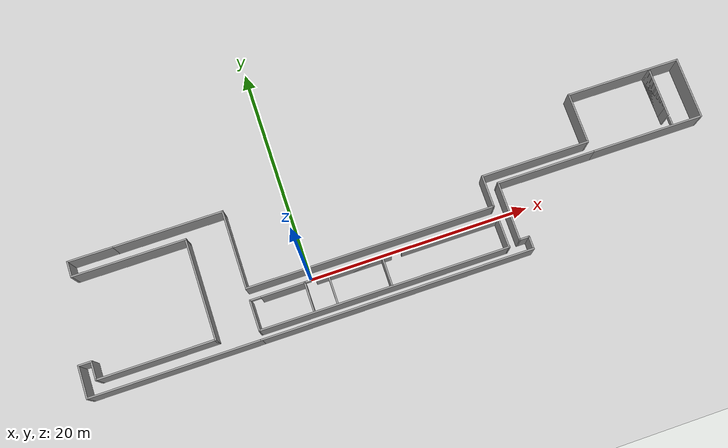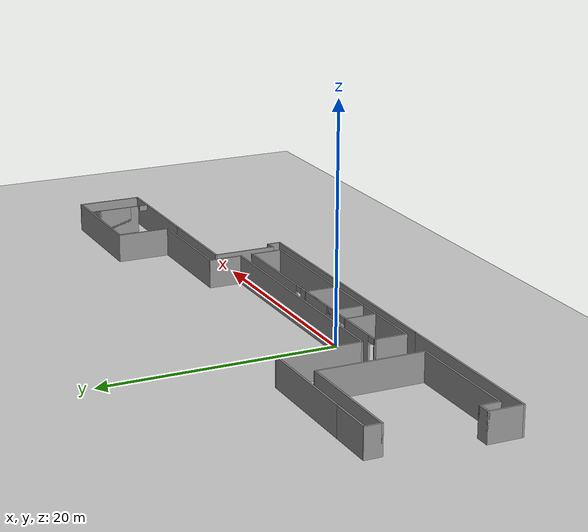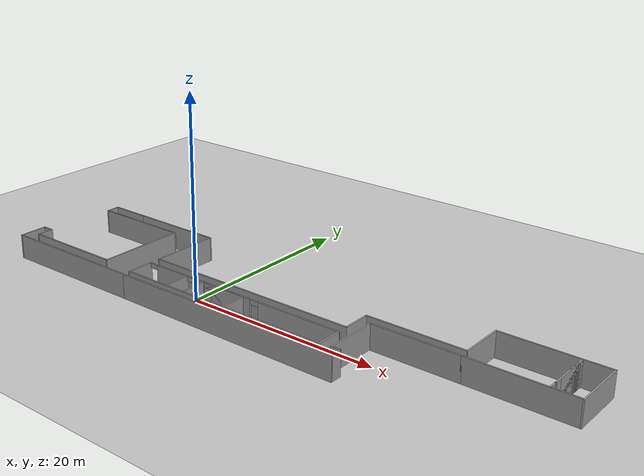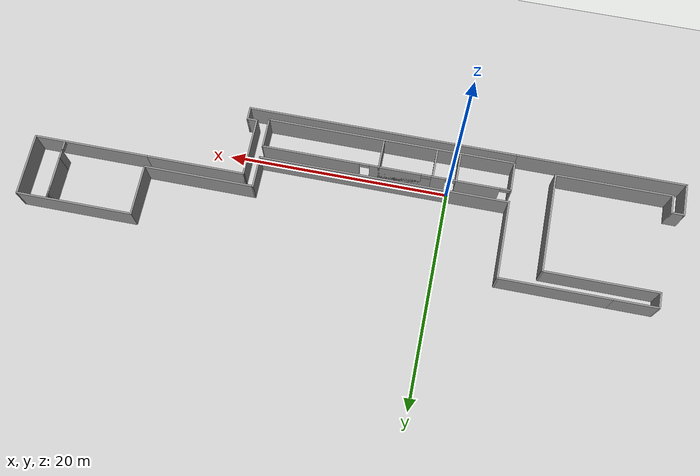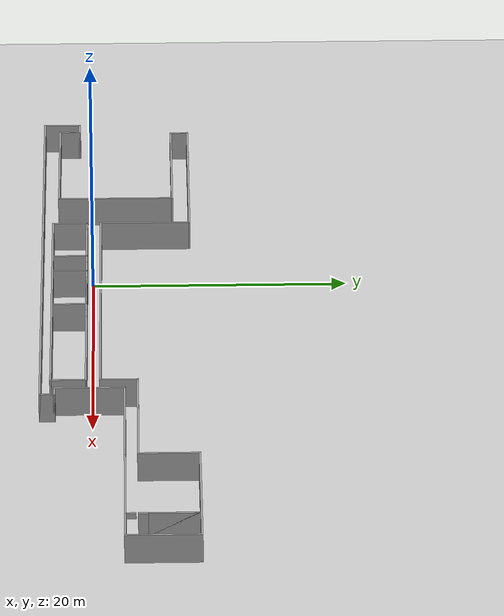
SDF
<sdf version="1.9">
 <world name="default">
  <light name="sun" type="directional">
   <pose>0 0 10 0 0 0</pose>
   <diffuse>0.8 0.8 0.8 1</diffuse>
   <specular>0.2 0.2 0.2 1</specular>
   <attenuation>
    <range>1000</range>
    <constant>0.9</constant>
    <linear>0.01</linear>
    <quadratic>0.001</quadratic>
   </attenuation>
   <direction>-0.5 0.1 -0.9</direction>
  </light>
  <model name="ground_plane">
   <static>1</static>
   <link name="link">
    <collision name="collision">
     <geometry><plane><normal>0 0 1</normal><size>100 100</size></plane></geometry>
     <surface><friction><ode><mu>100</mu><mu2>50</mu2></ode></friction></surface>
    </collision>
    <visual name="visual">
     <cast_shadows>0</cast_shadows>
     <geometry><plane><normal>0 0 1</normal><size>100 100</size></plane></geometry>
     <material>
      <script><uri>file://media/materials/scripts/gazebo.material</uri><name>Gazebo/Grey</name></script>
     </material>
    </visual>
   </link>
  </model>
  <gravity>0 0 -9.8</gravity>
  <magnetic_field>6e-06 2.3e-05 -4.2e-05</magnetic_field>
  <atmosphere type="adiabatic"/>
  <physics type="ode">
   <max_step_size>0.001</max_step_size>
   <real_time_factor>1</real_time_factor>
   <real_time_update_rate>1000</real_time_update_rate>
  </physics>
  <scene><ambient>0.4 0.4 0.4 1</ambient><background>0.7 0.7 0.7 1</background><shadows>1</shadows></scene>
  <audio><device>default</device></audio>
  <spherical_coordinates>
   <surface_model>EARTH_WGS84</surface_model>
   <latitude_deg>0</latitude_deg>
   <longitude_deg>0</longitude_deg>
   <elevation>0</elevation>
   <heading_deg>0</heading_deg>
  </spherical_coordinates>
  <model name="office_v1">
   <pose>8.25459 2.01112 0 0 -0 0</pose>
   <link name="Wall_1">
    <collision name="Wall_1_Collision">
     <geometry><box><size>22.5 0.15 2.5</size></box></geometry>
     <pose>0 0 1.25 0 -0 0</pose>
    </collision>
    <visual name="Wall_1_Visual">
     <pose>0 0 1.25 0 -0 0</pose>
     <geometry><box><size>22.5 0.15 2.5</size></box></geometry>
     <material>
      <script><uri>file://media/materials/scripts/gazebo.material</uri><name>Gazebo/Grey</name></script>
      <ambient>1 1 1 1</ambient>
     </material>
     <meta><layer>0</layer></meta>
    </visual>
    <pose>-2.525 -1.425 0 0 -0 0</pose>
   </link>
   <link name="Wall_18">
    <collision name="Wall_18_Collision">
     <geometry><box><size>9 0.15 2.5</size></box></geometry>
     <pose>0 0 1.25 0 -0 0</pose>
    </collision>
    <visual name="Wall_18_Visual">
     <pose>0 0 1.25 0 -0 0</pose>
     <geometry><box><size>9 0.15 2.5</size></box></geometry>
     <material>
      <script><uri>file://media/materials/scripts/gazebo.material</uri><name>Gazebo/Grey</name></script>
      <ambient>1 1 1 1</ambient>
     </material>
     <meta><layer>0</layer></meta>
    </visual>
    <pose>14.175 0.425 0 0 -0 0</pose>
   </link>
   <link name="Wall_19">
    <collision name="Wall_19_Collision">
     <geometry><box><size>10.25 0.15 2.5</size></box></geometry>
     <pose>0 0 1.25 0 -0 0</pose>
    </collision>
    <visual name="Wall_19_Visual">
     <pose>0 0 1.25 0 -0 0</pose>
     <geometry><box><size>10.25 0.15 2.5</size></box></geometry>
     <material>
      <script><uri>file://media/materials/scripts/gazebo.material</uri><name>Gazebo/Grey</name></script>
      <ambient>1 1 1 1</ambient>
     </material>
     <meta><layer>0</layer></meta>
    </visual>
    <pose>23.65 0.425 0 0 -0 0</pose>
   </link>
   <link name="Wall_2">
    <collision name="Wall_2_Collision">
     <geometry><box><size>3 0.15 2.5</size></box></geometry>
     <pose>0 0 1.25 0 -0 0</pose>
    </collision>
    <visual name="Wall_2_Visual">
     <pose>0 0 1.25 0 -0 0</pose>
     <geometry><box><size>3 0.15 2.5</size></box></geometry>
     <material>
      <script><uri>file://media/materials/scripts/gazebo.material</uri><name>Gazebo/Grey</name></script>
      <ambient>1 1 1 1</ambient>
     </material>
     <meta><layer>0</layer></meta>
    </visual>
    <pose>8.65 -0 0 0 -0 1.5708</pose>
   </link>
   <link name="Wall_22">
    <pose>-2.525 -2.525 0 0 -0 0</pose>
    <visual name="Wall_22_Visual_0">
     <pose>-11.1859 0 1.25 0 -0 0</pose>
     <geometry><box><size>0.128177 0.15 2.5</size></box></geometry>
     <material>
      <script><uri>file://media/materials/scripts/gazebo.material</uri><name>Gazebo/Grey</name></script>
      <ambient>1 1 1 1</ambient>
     </material>
     <meta><layer>0</layer></meta>
    </visual>
    <collision name="Wall_22_Collision_0">
     <geometry><box><size>0.128177 0.15 2.5</size></box></geometry>
     <pose>-11.1859 0 1.25 0 -0 0</pose>
    </collision>
    <visual name="Wall_22_Visual_1">
     <pose>-8.24603 0 1.25 0 -0 0</pose>
     <geometry><box><size>3.95159 0.15 2.5</size></box></geometry>
     <material>
      <script><uri>file://media/materials/scripts/gazebo.material</uri><name>Gazebo/Grey</name></script>
      <ambient>1 1 1 1</ambient>
     </material>
     <meta><layer>0</layer></meta>
    </visual>
    <collision name="Wall_22_Collision_1">
     <geometry><box><size>3.95159 0.15 2.5</size></box></geometry>
     <pose>-8.24603 0 1.25 0 -0 0</pose>
    </collision>
    <visual name="Wall_22_Visual_2">
     <pose>-4.73281 0 1.25 0 -0 0</pose>
     <geometry><box><size>1.27485 0.15 2.5</size></box></geometry>
     <material>
      <script><uri>file://media/materials/scripts/gazebo.material</uri><name>Gazebo/Grey</name></script>
      <ambient>1 1 1 1</ambient>
     </material>
     <meta><layer>0</layer></meta>
    </visual>
    <collision name="Wall_22_Collision_2">
     <geometry><box><size>1.27485 0.15 2.5</size></box></geometry>
     <pose>-4.73281 0 1.25 0 -0 0</pose>
    </collision>
    <visual name="Wall_22_Visual_3">
     <pose>-0.86218 0 1.25 0 -0 0</pose>
     <geometry><box><size>4.6664 0.15 2.5</size></box></geometry>
     <material>
      <script><uri>file://media/materials/scripts/gazebo.material</uri><name>Gazebo/Grey</name></script>
      <ambient>1 1 1 1</ambient>
     </material>
     <meta><layer>0</layer></meta>
    </visual>
    <collision name="Wall_22_Collision_3">
     <geometry><box><size>4.6664 0.15 2.5</size></box></geometry>
     <pose>-0.86218 0 1.25 0 -0 0</pose>
    </collision>
    <visual name="Wall_22_Visual_4">
     <pose>6.81051 0 1.25 0 -0 0</pose>
     <geometry><box><size>8.87898 0.15 2.5</size></box></geometry>
     <material>
      <script><uri>file://media/materials/scripts/gazebo.material</uri><name>Gazebo/Grey</name></script>
      <ambient>1 1 1 1</ambient>
     </material>
     <meta><layer>0</layer></meta>
    </visual>
    <collision name="Wall_22_Collision_4">
     <geometry><box><size>8.87898 0.15 2.5</size></box></geometry>
     <pose>6.81051 0 1.25 0 -0 0</pose>
    </collision>
    <visual name="Wall_22_Visual_5">
     <pose>-10.6718 0 2.25 0 -0 0</pose>
     <geometry><box><size>0.9 0.15 0.5</size></box></geometry>
     <material>
      <script><uri>file://media/materials/scripts/gazebo.material</uri><name>Gazebo/Grey</name></script>
      <ambient>1 1 1 1</ambient>
     </material>
     <meta><layer>0</layer></meta>
    </visual>
    <collision name="Wall_22_Collision_5">
     <geometry><box><size>0.9 0.15 0.5</size></box></geometry>
     <pose>-10.6718 0 2.25 0 -0 0</pose>
    </collision>
    <visual name="Wall_22_Visual_6">
     <pose>-5.82023 0 2.25 0 -0 0</pose>
     <geometry><box><size>0.9 0.15 0.5</size></box></geometry>
     <material>
      <script><uri>file://media/materials/scripts/gazebo.material</uri><name>Gazebo/Grey</name></script>
      <ambient>1 1 1 1</ambient>
     </material>
     <meta><layer>0</layer></meta>
    </visual>
    <collision name="Wall_22_Collision_6">
     <geometry><box><size>0.9 0.15 0.5</size></box></geometry>
     <pose>-5.82023 0 2.25 0 -0 0</pose>
    </collision>
    <visual name="Wall_22_Visual_7">
     <pose>-3.64538 0 2.25 0 -0 0</pose>
     <geometry><box><size>0.9 0.15 0.5</size></box></geometry>
     <material>
      <script><uri>file://media/materials/scripts/gazebo.material</uri><name>Gazebo/Grey</name></script>
      <ambient>1 1 1 1</ambient>
     </material>
     <meta><layer>0</layer></meta>
    </visual>
    <collision name="Wall_22_Collision_7">
     <geometry><box><size>0.9 0.15 0.5</size></box></geometry>
     <pose>-3.64538 0 2.25 0 -0 0</pose>
    </collision>
    <visual name="Wall_22_Visual_8">
     <pose>1.92102 0 2.25 0 -0 0</pose>
     <geometry><box><size>0.9 0.15 0.5</size></box></geometry>
     <material>
      <script><uri>file://media/materials/scripts/gazebo.material</uri><name>Gazebo/Grey</name></script>
      <ambient>1 1 1 1</ambient>
     </material>
     <meta><layer>0</layer></meta>
    </visual>
    <collision name="Wall_22_Collision_8">
     <geometry><box><size>0.9 0.15 0.5</size></box></geometry>
     <pose>1.92102 0 2.25 0 -0 0</pose>
    </collision>
   </link>
   <link name="Wall_24">
    <collision name="Wall_24_Collision">
     <geometry><box><size>2.84984 0.15 2.5</size></box></geometry>
     <pose>0 0 1.25 0 -0 0</pose>
    </collision>
    <visual name="Wall_24_Visual">
     <pose>0 0 1.25 0 -0 0</pose>
     <geometry><box><size>2.84984 0.15 2.5</size></box></geometry>
     <material>
      <script><uri>file://media/materials/scripts/gazebo.material</uri><name>Gazebo/Grey</name></script>
      <ambient>1 1 1 1</ambient>
     </material>
     <meta><layer>0</layer></meta>
    </visual>
    <pose>8.6576 -3.8749 0 0 -0 -1.56516</pose>
   </link>
   <link name="Wall_25">
    <collision name="Wall_25_Collision">
     <geometry><box><size>22.5 0.15 2.5</size></box></geometry>
     <pose>0 0 1.25 0 -0 0</pose>
    </collision>
    <visual name="Wall_25_Visual">
     <pose>0 0 1.25 0 -0 0</pose>
     <geometry><box><size>22.5 0.15 2.5</size></box></geometry>
     <material>
      <script><uri>file://media/materials/scripts/gazebo.material</uri><name>Gazebo/Grey</name></script>
      <ambient>1 1 1 1</ambient>
     </material>
     <meta><layer>0</layer></meta>
    </visual>
    <pose>-2.47937 -5.2248 0 0 -0 3.14159</pose>
   </link>
   <link name="Wall_26">
    <collision name="Wall_26_Collision">
     <geometry><box><size>2.84984 0.15 2.5</size></box></geometry>
     <pose>0 0 1.25 0 -0 0</pose>
    </collision>
    <visual name="Wall_26_Visual">
     <pose>0 0 1.25 0 -0 0</pose>
     <geometry><box><size>2.84984 0.15 2.5</size></box></geometry>
     <material>
      <script><uri>file://media/materials/scripts/gazebo.material</uri><name>Gazebo/Grey</name></script>
      <ambient>1 1 1 1</ambient>
     </material>
     <meta><layer>0</layer></meta>
    </visual>
    <pose>-13.6924 -3.8749 0 0 -0 1.57643</pose>
   </link>
   <link name="Wall_3">
    <collision name="Wall_3_Collision">
     <geometry><box><size>10 0.15 2.5</size></box></geometry>
     <pose>0 0 1.25 0 -0 0</pose>
    </collision>
    <visual name="Wall_3_Visual">
     <pose>0 0 1.25 0 -0 0</pose>
     <geometry><box><size>10 0.15 2.5</size></box></geometry>
     <material>
      <script><uri>file://media/materials/scripts/gazebo.material</uri><name>Gazebo/Grey</name></script>
      <ambient>1 1 1 1</ambient>
     </material>
     <meta><layer>0</layer></meta>
    </visual>
    <pose>13.575 1.425 0 0 -0 0</pose>
   </link>
   <link name="Wall_30">
    <collision name="Wall_30_Collision">
     <geometry><box><size>5.5 0.15 2.5</size></box></geometry>
     <pose>0 0 1.25 0 -0 0</pose>
    </collision>
    <visual name="Wall_30_Visual">
     <pose>0 0 1.25 0 -0 0</pose>
     <geometry><box><size>5.5 0.15 2.5</size></box></geometry>
     <material>
      <script><uri>file://media/materials/scripts/gazebo.material</uri><name>Gazebo/Grey</name></script>
      <ambient>1 1 1 1</ambient>
     </material>
     <meta><layer>0</layer></meta>
    </visual>
    <pose>9.75 -2.25 0 0 -0 -1.5708</pose>
   </link>
   <link name="Wall_31">
    <collision name="Wall_31_Collision">
     <geometry><box><size>1 0.15 2.5</size></box></geometry>
     <pose>0 0 1.25 0 -0 0</pose>
    </collision>
    <visual name="Wall_31_Visual">
     <pose>0 0 1.25 0 -0 0</pose>
     <geometry><box><size>1 0.15 2.5</size></box></geometry>
     <material>
      <script><uri>file://media/materials/scripts/gazebo.material</uri><name>Gazebo/Grey</name></script>
      <ambient>1 1 1 1</ambient>
     </material>
     <meta><layer>0</layer></meta>
    </visual>
    <pose>10.175 -4.925 0 0 -0 0</pose>
   </link>
   <link name="Wall_32">
    <collision name="Wall_32_Collision">
     <geometry><box><size>1.25 0.15 2.5</size></box></geometry>
     <pose>0 0 1.25 0 -0 0</pose>
    </collision>
    <visual name="Wall_32_Visual">
     <pose>0 0 1.25 0 -0 0</pose>
     <geometry><box><size>1.25 0.15 2.5</size></box></geometry>
     <material>
      <script><uri>file://media/materials/scripts/gazebo.material</uri><name>Gazebo/Grey</name></script>
      <ambient>1 1 1 1</ambient>
     </material>
     <meta><layer>0</layer></meta>
    </visual>
    <pose>10.6 -5.475 0 0 -0 -1.5708</pose>
   </link>
   <link name="Wall_33">
    <collision name="Wall_33_Collision">
     <geometry><box><size>24.5 0.15 2.5</size></box></geometry>
     <pose>0 0 1.25 0 -0 0</pose>
    </collision>
    <visual name="Wall_33_Visual">
     <pose>0 0 1.25 0 -0 0</pose>
     <geometry><box><size>24.5 0.15 2.5</size></box></geometry>
     <material>
      <script><uri>file://media/materials/scripts/gazebo.material</uri><name>Gazebo/Grey</name></script>
      <ambient>1 1 1 1</ambient>
     </material>
     <meta><layer>0</layer></meta>
    </visual>
    <pose>-1.575 -6.025 0 0 -0 3.14159</pose>
   </link>
   <link name="Wall_35">
    <collision name="Wall_35_Collision">
     <geometry><box><size>7.25 0.15 2.5</size></box></geometry>
     <pose>0 0 1.25 0 -0 0</pose>
    </collision>
    <visual name="Wall_35_Visual">
     <pose>0 0 1.25 0 -0 0</pose>
     <geometry><box><size>7.25 0.15 2.5</size></box></geometry>
     <material>
      <script><uri>file://media/materials/scripts/gazebo.material</uri><name>Gazebo/Grey</name></script>
      <ambient>1 1 1 1</ambient>
     </material>
     <meta><layer>0</layer></meta>
    </visual>
    <pose>-13.7 2.125 0 0 -0 1.5708</pose>
   </link>
   <link name="Wall_36">
    <collision name="Wall_36_Collision">
     <geometry><box><size>10 0.15 2.5</size></box></geometry>
     <pose>0 0 1.25 0 -0 0</pose>
    </collision>
    <visual name="Wall_36_Visual">
     <pose>0 0 1.25 0 -0 0</pose>
     <geometry><box><size>10 0.15 2.5</size></box></geometry>
     <material>
      <script><uri>file://media/materials/scripts/gazebo.material</uri><name>Gazebo/Grey</name></script>
      <ambient>1 1 1 1</ambient>
     </material>
     <meta><layer>0</layer></meta>
    </visual>
    <pose>-18.625 5.675 0 0 -0 3.14159</pose>
   </link>
   <link name="Wall_38">
    <collision name="Wall_38_Collision">
     <geometry><box><size>15.25 0.15 2.5</size></box></geometry>
     <pose>0 0 1.25 0 -0 0</pose>
    </collision>
    <visual name="Wall_38_Visual">
     <pose>0 0 1.25 0 -0 0</pose>
     <geometry><box><size>15.25 0.15 2.5</size></box></geometry>
     <material>
      <script><uri>file://media/materials/scripts/gazebo.material</uri><name>Gazebo/Grey</name></script>
      <ambient>1 1 1 1</ambient>
     </material>
     <meta><layer>0</layer></meta>
    </visual>
    <pose>-21.3 -6.025 0 0 -0 3.14159</pose>
   </link>
   <link name="Wall_39">
    <collision name="Wall_39_Collision">
     <geometry><box><size>3 0.15 2.5</size></box></geometry>
     <pose>0 0 1.25 0 -0 0</pose>
    </collision>
    <visual name="Wall_39_Visual">
     <pose>0 0 1.25 0 -0 0</pose>
     <geometry><box><size>3 0.15 2.5</size></box></geometry>
     <material>
      <script><uri>file://media/materials/scripts/gazebo.material</uri><name>Gazebo/Grey</name></script>
      <ambient>1 1 1 1</ambient>
     </material>
     <meta><layer>0</layer></meta>
    </visual>
    <pose>-28.85 -4.6 0 0 -0 1.5708</pose>
   </link>
   <link name="Wall_4">
    <collision name="Wall_4_Collision">
     <geometry><box><size>4.75 0.15 2.5</size></box></geometry>
     <pose>0 0 1.25 0 -0 0</pose>
    </collision>
    <visual name="Wall_4_Visual">
     <pose>0 0 1.25 0 -0 0</pose>
     <geometry><box><size>4.75 0.15 2.5</size></box></geometry>
     <material>
      <script><uri>file://media/materials/scripts/gazebo.material</uri><name>Gazebo/Grey</name></script>
      <ambient>1 1 1 1</ambient>
     </material>
     <meta><layer>0</layer></meta>
    </visual>
    <pose>18.5 3.725 0 0 -0 1.5708</pose>
   </link>
   <link name="Wall_40">
    <collision name="Wall_40_Collision">
     <geometry><box><size>1.25 0.15 2.5</size></box></geometry>
     <pose>0 0 1.25 0 -0 0</pose>
    </collision>
    <visual name="Wall_40_Visual">
     <pose>0 0 1.25 0 -0 0</pose>
     <geometry><box><size>1.25 0.15 2.5</size></box></geometry>
     <material>
      <script><uri>file://media/materials/scripts/gazebo.material</uri><name>Gazebo/Grey</name></script>
      <ambient>1 1 1 1</ambient>
     </material>
     <meta><layer>0</layer></meta>
    </visual>
    <pose>-28.3 -3.175 0 0 -0 0</pose>
   </link>
   <link name="Wall_41">
    <collision name="Wall_41_Collision">
     <geometry><box><size>1.75 0.15 2.5</size></box></geometry>
     <pose>0 0 1.25 0 -0 0</pose>
    </collision>
    <visual name="Wall_41_Visual">
     <pose>0 0 1.25 0 -0 0</pose>
     <geometry><box><size>1.75 0.15 2.5</size></box></geometry>
     <material>
      <script><uri>file://media/materials/scripts/gazebo.material</uri><name>Gazebo/Grey</name></script>
      <ambient>1 1 1 1</ambient>
     </material>
     <meta><layer>0</layer></meta>
    </visual>
    <pose>-27.75 -3.975 0 0 -0 -1.5708</pose>
   </link>
   <link name="Wall_42">
    <collision name="Wall_42_Collision">
     <geometry><box><size>10.5 0.15 2.5</size></box></geometry>
     <pose>0 0 1.25 0 -0 0</pose>
    </collision>
    <visual name="Wall_42_Visual">
     <pose>0 0 1.25 0 -0 0</pose>
     <geometry><box><size>10.5 0.15 2.5</size></box></geometry>
     <material>
      <script><uri>file://media/materials/scripts/gazebo.material</uri><name>Gazebo/Grey</name></script>
      <ambient>1 1 1 1</ambient>
     </material>
     <meta><layer>0</layer></meta>
    </visual>
    <pose>-22.575 -4.775 0 0 -0 0</pose>
   </link>
   <link name="Wall_43">
    <collision name="Wall_43_Collision">
     <geometry><box><size>9.25 0.15 2.5</size></box></geometry>
     <pose>0 0 1.25 0 -0 0</pose>
    </collision>
    <visual name="Wall_43_Visual">
     <pose>0 0 1.25 0 -0 0</pose>
     <geometry><box><size>9.25 0.15 2.5</size></box></geometry>
     <material>
      <script><uri>file://media/materials/scripts/gazebo.material</uri><name>Gazebo/Grey</name></script>
      <ambient>1 1 1 1</ambient>
     </material>
     <meta><layer>0</layer></meta>
    </visual>
    <pose>-17.4 -0.225 0 0 -0 1.5708</pose>
   </link>
   <link name="Wall_44">
    <collision name="Wall_44_Collision">
     <geometry><box><size>10.25 0.15 2.5</size></box></geometry>
     <pose>0 0 1.25 0 -0 0</pose>
    </collision>
    <visual name="Wall_44_Visual">
     <pose>0 0 1.25 0 -0 0</pose>
     <geometry><box><size>10.25 0.15 2.5</size></box></geometry>
     <material>
      <script><uri>file://media/materials/scripts/gazebo.material</uri><name>Gazebo/Grey</name></script>
      <ambient>1 1 1 1</ambient>
     </material>
     <meta><layer>0</layer></meta>
    </visual>
    <pose>-22.45 4.325 0 0 -0 3.14159</pose>
   </link>
   <link name="Wall_47">
    <collision name="Wall_47_Collision">
     <geometry><box><size>4 0.15 2.5</size></box></geometry>
     <pose>0 0 1.25 0 -0 0</pose>
    </collision>
    <visual name="Wall_47_Visual">
     <pose>0 0 1.25 0 -0 0</pose>
     <geometry><box><size>4 0.15 2.5</size></box></geometry>
     <material>
      <script><uri>file://media/materials/scripts/gazebo.material</uri><name>Gazebo/Grey</name></script>
      <ambient>1 1 1 1</ambient>
     </material>
     <meta><layer>0</layer></meta>
    </visual>
    <pose>-25.475 5.675 0 0 -0 3.14159</pose>
   </link>
   <link name="Wall_49">
    <collision name="Wall_49_Collision">
     <geometry><box><size>1.5 0.15 2.5</size></box></geometry>
     <pose>0 0 1.25 0 -0 0</pose>
    </collision>
    <visual name="Wall_49_Visual">
     <pose>0 0 1.25 0 -0 0</pose>
     <geometry><box><size>1.5 0.15 2.5</size></box></geometry>
     <material>
      <script><uri>file://media/materials/scripts/gazebo.material</uri><name>Gazebo/Grey</name></script>
      <ambient>1 1 1 1</ambient>
     </material>
     <meta><layer>0</layer></meta>
    </visual>
    <pose>-27.5 5 0 0 -0 1.5708</pose>
   </link>
   <link name="Wall_5">
    <collision name="Wall_5_Collision">
     <geometry><box><size>10.5 0.15 2.5</size></box></geometry>
     <pose>0 0 1.25 0 -0 0</pose>
    </collision>
    <visual name="Wall_5_Visual">
     <pose>0 0 1.25 0 -0 0</pose>
     <geometry><box><size>10.5 0.15 2.5</size></box></geometry>
     <material>
      <script><uri>file://media/materials/scripts/gazebo.material</uri><name>Gazebo/Grey</name></script>
      <ambient>1 1 1 1</ambient>
     </material>
     <meta><layer>0</layer></meta>
    </visual>
    <pose>23.675 6.025 0 0 -0 0</pose>
   </link>
   <link name="Wall_51">
    <collision name="Wall_51_Collision">
     <geometry><box><size>5.75 0.15 2.5</size></box></geometry>
     <pose>0 0 1.25 0 -0 0</pose>
    </collision>
    <visual name="Wall_51_Visual">
     <pose>0 0 1.25 0 -0 0</pose>
     <geometry><box><size>5.75 0.15 2.5</size></box></geometry>
     <material>
      <script><uri>file://media/materials/scripts/gazebo.material</uri><name>Gazebo/Grey</name></script>
      <ambient>1 1 1 1</ambient>
     </material>
     <meta><layer>0</layer></meta>
    </visual>
    <pose>28.85 3.225 0 0 -0 -1.5708</pose>
   </link>
   <link name="Wall_53">
    <pose>26.1401 3.21182 0 0 -0 1.5708</pose>
    <visual name="Wall_53_Visual_0">
     <pose>-2.74089 0 1.25 0 -0 0</pose>
     <geometry><box><size>0.01822 0.15 2.5</size></box></geometry>
     <material>
      <script><uri>file://media/materials/scripts/gazebo.material</uri><name>Gazebo/Grey</name></script>
      <ambient>1 1 1 1</ambient>
     </material>
     <meta><layer>0</layer></meta>
    </visual>
    <collision name="Wall_53_Collision_0">
     <geometry><box><size>0.01822 0.15 2.5</size></box></geometry>
     <pose>-2.74089 0 1.25 0 -0 0</pose>
    </collision>
    <visual name="Wall_53_Visual_1">
     <pose>0.45911 0 1.25 0 -0 0</pose>
     <geometry><box><size>4.58178 0.15 2.5</size></box></geometry>
     <material>
      <script><uri>file://media/materials/scripts/gazebo.material</uri><name>Gazebo/Grey</name></script>
      <ambient>1 1 1 1</ambient>
     </material>
     <meta><layer>0</layer></meta>
    </visual>
    <collision name="Wall_53_Collision_1">
     <geometry><box><size>4.58178 0.15 2.5</size></box></geometry>
     <pose>0.45911 0 1.25 0 -0 0</pose>
    </collision>
    <visual name="Wall_53_Visual_2">
     <pose>0.840765 0 1.25 0 -0 0</pose>
     <geometry><box><size>3.81847 0.15 2.5</size></box></geometry>
     <material>
      <script><uri>file://media/materials/scripts/gazebo.material</uri><name>Gazebo/Grey</name></script>
      <ambient>1 1 1 1</ambient>
     </material>
     <meta><layer>0</layer></meta>
    </visual>
    <collision name="Wall_53_Collision_2">
     <geometry><box><size>3.81847 0.15 2.5</size></box></geometry>
     <pose>0.840765 0 1.25 0 -0 0</pose>
    </collision>
    <visual name="Wall_53_Visual_3">
     <pose>-2.35012 0 2.25 0 -0 0</pose>
     <geometry><box><size>0.76331 0.15 0.5</size></box></geometry>
     <material>
      <script><uri>file://media/materials/scripts/gazebo.material</uri><name>Gazebo/Grey</name></script>
      <ambient>1 1 1 1</ambient>
     </material>
     <meta><layer>0</layer></meta>
    </visual>
    <collision name="Wall_53_Collision_3">
     <geometry><box><size>0.76331 0.15 0.5</size></box></geometry>
     <pose>-2.35012 0 2.25 0 -0 0</pose>
    </collision>
   </link>
   <link name="Wall_56">
    <collision name="Wall_56_Collision">
     <geometry><box><size>2.75 0.15 2.5</size></box></geometry>
     <pose>0 0 1.25 0 -0 0</pose>
    </collision>
    <visual name="Wall_56_Visual">
     <pose>0 0 1.25 0 -0 0</pose>
     <geometry><box><size>2.75 0.15 2.5</size></box></geometry>
     <material>
      <script><uri>file://media/materials/scripts/gazebo.material</uri><name>Gazebo/Grey</name></script>
      <ambient>1 1 1 1</ambient>
     </material>
     <meta><layer>0</layer></meta>
    </visual>
    <pose>-8.85 -3.825 0 0 -0 -1.5708</pose>
   </link>
   <link name="Wall_59">
    <collision name="Wall_59_Collision">
     <geometry><box><size>2.75 0.15 2.5</size></box></geometry>
     <pose>0 0 1.25 0 -0 0</pose>
    </collision>
    <visual name="Wall_59_Visual">
     <pose>0 0 1.25 0 -0 0</pose>
     <geometry><box><size>2.75 0.15 2.5</size></box></geometry>
     <material>
      <script><uri>file://media/materials/scripts/gazebo.material</uri><name>Gazebo/Grey</name></script>
      <ambient>1 1 1 1</ambient>
     </material>
     <meta><layer>0</layer></meta>
    </visual>
    <pose>-6.75 -3.825 0 0 -0 -1.5708</pose>
   </link>
   <link name="Wall_61">
    <collision name="Wall_61_Collision">
     <geometry><box><size>5 0.15 2.5</size></box></geometry>
     <pose>0 0 1.25 0 -0 0</pose>
    </collision>
    <visual name="Wall_61_Visual">
     <pose>0 0 1.25 0 -0 0</pose>
     <geometry><box><size>5 0.15 2.5</size></box></geometry>
     <material>
      <script><uri>file://media/materials/scripts/gazebo.material</uri><name>Gazebo/Grey</name></script>
      <ambient>1 1 1 1</ambient>
     </material>
     <meta><layer>0</layer></meta>
    </visual>
    <pose>-4.325 -2.525 0 0 -0 0</pose>
   </link>
   <link name="Wall_62">
    <collision name="Wall_62_Collision">
     <geometry><box><size>2.75 0.15 2.5</size></box></geometry>
     <pose>0 0 1.25 0 -0 0</pose>
    </collision>
    <visual name="Wall_62_Visual">
     <pose>0 0 1.25 0 -0 0</pose>
     <geometry><box><size>2.75 0.15 2.5</size></box></geometry>
     <material>
      <script><uri>file://media/materials/scripts/gazebo.material</uri><name>Gazebo/Grey</name></script>
      <ambient>1 1 1 1</ambient>
     </material>
     <meta><layer>0</layer></meta>
    </visual>
    <pose>-1.9 -3.825 0 0 -0 -1.5708</pose>
   </link>
   <static>1</static>
  </model>
 </world>
</sdf>
